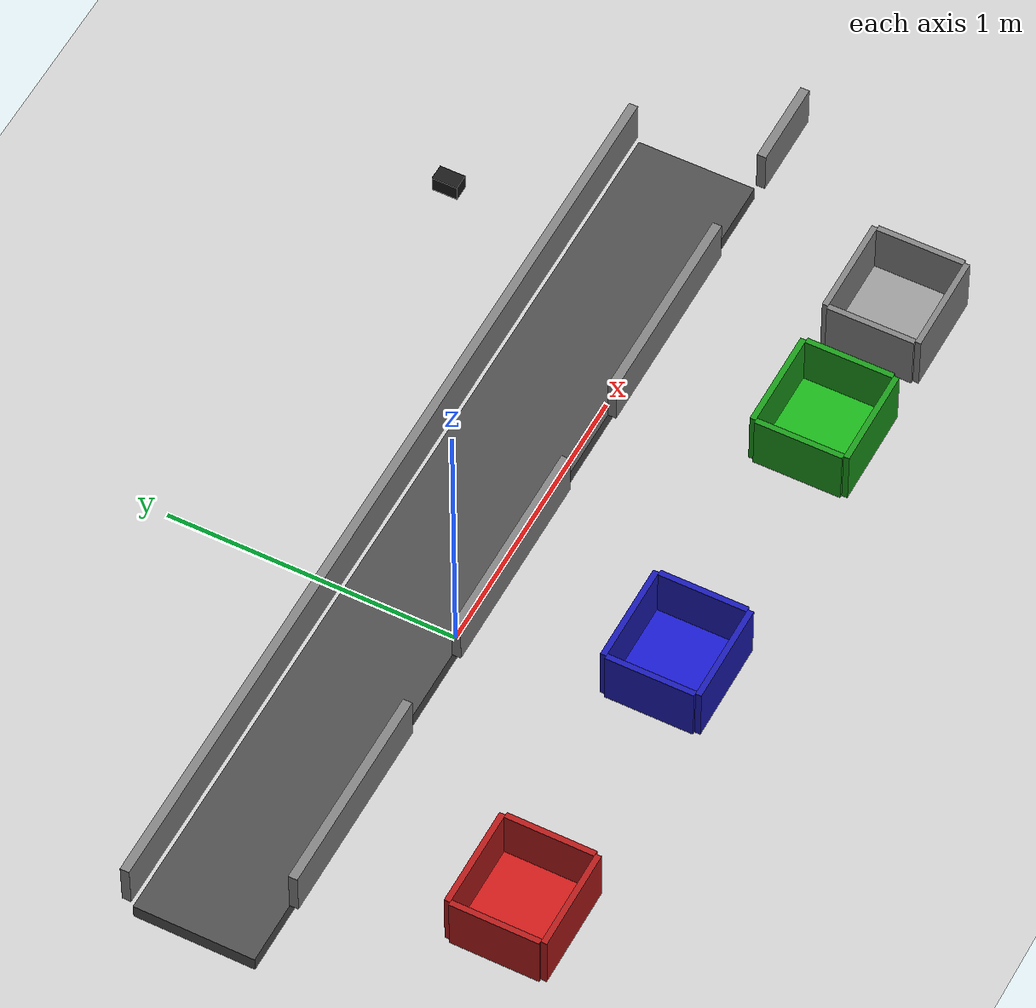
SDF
<?xml version="1.0"?>
<sdf version="1.6">
  <world name="conveyor_world">

    <include><uri>model://sun</uri></include>
    <include><uri>model://ground_plane</uri></include>

    <light name="overhead_light" type="directional">
      <pose>0 0 10 0 0 0</pose>
      <diffuse>1.0 1.0 1.0 1</diffuse>
      <specular>0.2 0.2 0.2 1</specular>
      <direction>0 0 -1</direction>
      <cast_shadows>false</cast_shadows>
    </light>

    <!-- Conveyor belt -->
    <model name="conveyor_belt">
      <static>true</static>
      <pose>0 0 0 0 0 0</pose>

      <link name="belt_surface">
        <pose>0 0 0.5 0 0 0</pose>
        <collision name="belt_col">
          <geometry><box><size>3.2 0.4 0.05</size></box></geometry>
          <surface>
            <friction><ode><mu>0.8</mu><mu2>0.8</mu2></ode></friction>
          </surface>
        </collision>
        <visual name="belt_vis">
          <geometry><box><size>3.2 0.4 0.05</size></box></geometry>
          <material>
            <ambient>0.2 0.2 0.2 1</ambient>
            <diffuse>0.3 0.3 0.3 1</diffuse>
          </material>
        </visual>
      </link>

      <!-- Back rail (boxes pushed toward front/negative Y) -->
      <link name="back_rail">
        <pose>0 0.22 0.62 0 0 0</pose>
        <collision name="br_col">
          <geometry><box><size>3.2 0.03 0.15</size></box></geometry>
        </collision>
        <visual name="br_vis">
          <geometry><box><size>3.2 0.03 0.15</size></box></geometry>
          <material><ambient>0.5 0.5 0.5 1</ambient></material>
        </visual>
      </link>

      <!-- Front rail has gaps at bin positions so boxes can exit -->
      <!-- Segment 1: spawn to red bin -->
      <link name="front_rail_1">
        <pose>-1.05 -0.22 0.62 0 0 0</pose>
        <collision name="fr1_col">
          <geometry><box><size>0.7 0.03 0.15</size></box></geometry>
        </collision>
        <visual name="fr1_vis">
          <geometry><box><size>0.7 0.03 0.15</size></box></geometry>
          <material><ambient>0.5 0.5 0.5 1</ambient></material>
        </visual>
      </link>

      <!-- Segment 2: red bin to blue bin -->
      <link name="front_rail_2">
        <pose>-0.05 -0.22 0.62 0 0 0</pose>
        <collision name="fr2_col">
          <geometry><box><size>0.7 0.03 0.15</size></box></geometry>
        </collision>
        <visual name="fr2_vis">
          <geometry><box><size>0.7 0.03 0.15</size></box></geometry>
          <material><ambient>0.5 0.5 0.5 1</ambient></material>
        </visual>
      </link>

      <!-- Segment 3: blue bin to green bin -->
      <link name="front_rail_3">
        <pose>0.95 -0.22 0.62 0 0 0</pose>
        <collision name="fr3_col">
          <geometry><box><size>0.7 0.03 0.15</size></box></geometry>
        </collision>
        <visual name="fr3_vis">
          <geometry><box><size>0.7 0.03 0.15</size></box></geometry>
          <material><ambient>0.5 0.5 0.5 1</ambient></material>
        </visual>
      </link>

      <!-- Segment 4: after green bin to end -->
      <link name="front_rail_4">
        <pose>1.75 -0.22 0.62 0 0 0</pose>
        <collision name="fr4_col">
          <geometry><box><size>0.3 0.03 0.15</size></box></geometry>
        </collision>
        <visual name="fr4_vis">
          <geometry><box><size>0.3 0.03 0.15</size></box></geometry>
          <material><ambient>0.5 0.5 0.5 1</ambient></material>
        </visual>
      </link>
    </model>

    <!-- RED BIN — at X=-0.8, front of belt -->
    <model name="bin_red">
      <static>true</static>
      <pose>-0.8 -0.65 0 0 0 0</pose>
      <link name="floor">
        <pose>0 0 0.01 0 0 0</pose>
        <collision name="c"><geometry><box><size>0.35 0.3 0.02</size></box></geometry></collision>
        <visual name="v"><geometry><box><size>0.35 0.3 0.02</size></box></geometry>
          <material><ambient>0.7 0.1 0.1 1</ambient><diffuse>0.8 0.1 0.1 1</diffuse></material>
        </visual>
      </link>
      <link name="wall_f"><pose>0 -0.16 0.1 0 0 0</pose>
        <collision name="c"><geometry><box><size>0.35 0.02 0.2</size></box></geometry></collision>
        <visual name="v"><geometry><box><size>0.35 0.02 0.2</size></box></geometry>
          <material><ambient>0.7 0.1 0.1 1</ambient></material></visual>
      </link>
      <link name="wall_b"><pose>0 0.16 0.1 0 0 0</pose>
        <collision name="c"><geometry><box><size>0.35 0.02 0.2</size></box></geometry></collision>
        <visual name="v"><geometry><box><size>0.35 0.02 0.2</size></box></geometry>
          <material><ambient>0.7 0.1 0.1 1</ambient></material></visual>
      </link>
      <link name="wall_l"><pose>-0.175 0 0.1 0 0 0</pose>
        <collision name="c"><geometry><box><size>0.02 0.3 0.2</size></box></geometry></collision>
        <visual name="v"><geometry><box><size>0.02 0.3 0.2</size></box></geometry>
          <material><ambient>0.7 0.1 0.1 1</ambient></material></visual>
      </link>
      <link name="wall_r"><pose>0.175 0 0.1 0 0 0</pose>
        <collision name="c"><geometry><box><size>0.02 0.3 0.2</size></box></geometry></collision>
        <visual name="v"><geometry><box><size>0.02 0.3 0.2</size></box></geometry>
          <material><ambient>0.7 0.1 0.1 1</ambient></material></visual>
      </link>
    </model>

    <!-- BLUE BIN — at X=0.2, front of belt -->
    <model name="bin_blue">
      <static>true</static>
      <pose>0.2 -0.65 0 0 0 0</pose>
      <link name="floor">
        <pose>0 0 0.01 0 0 0</pose>
        <collision name="c"><geometry><box><size>0.35 0.3 0.02</size></box></geometry></collision>
        <visual name="v"><geometry><box><size>0.35 0.3 0.02</size></box></geometry>
          <material><ambient>0.1 0.1 0.7 1</ambient><diffuse>0.1 0.1 0.8 1</diffuse></material>
        </visual>
      </link>
      <link name="wall_f"><pose>0 -0.16 0.1 0 0 0</pose>
        <collision name="c"><geometry><box><size>0.35 0.02 0.2</size></box></geometry></collision>
        <visual name="v"><geometry><box><size>0.35 0.02 0.2</size></box></geometry>
          <material><ambient>0.1 0.1 0.7 1</ambient></material></visual>
      </link>
      <link name="wall_b"><pose>0 0.16 0.1 0 0 0</pose>
        <collision name="c"><geometry><box><size>0.35 0.02 0.2</size></box></geometry></collision>
        <visual name="v"><geometry><box><size>0.35 0.02 0.2</size></box></geometry>
          <material><ambient>0.1 0.1 0.7 1</ambient></material></visual>
      </link>
      <link name="wall_l"><pose>-0.175 0 0.1 0 0 0</pose>
        <collision name="c"><geometry><box><size>0.02 0.3 0.2</size></box></geometry></collision>
        <visual name="v"><geometry><box><size>0.02 0.3 0.2</size></box></geometry>
          <material><ambient>0.1 0.1 0.7 1</ambient></material></visual>
      </link>
      <link name="wall_r"><pose>0.175 0 0.1 0 0 0</pose>
        <collision name="c"><geometry><box><size>0.02 0.3 0.2</size></box></geometry></collision>
        <visual name="v"><geometry><box><size>0.02 0.3 0.2</size></box></geometry>
          <material><ambient>0.1 0.1 0.7 1</ambient></material></visual>
      </link>
    </model>

    <!-- GREEN BIN — at X=1.2, front of belt -->
    <model name="bin_green">
      <static>true</static>
      <pose>1.2 -0.65 0 0 0 0</pose>
      <link name="floor">
        <pose>0 0 0.01 0 0 0</pose>
        <collision name="c"><geometry><box><size>0.35 0.3 0.02</size></box></geometry></collision>
        <visual name="v"><geometry><box><size>0.35 0.3 0.02</size></box></geometry>
          <material><ambient>0.1 0.6 0.1 1</ambient><diffuse>0.1 0.7 0.1 1</diffuse></material>
        </visual>
      </link>
      <link name="wall_f"><pose>0 -0.16 0.1 0 0 0</pose>
        <collision name="c"><geometry><box><size>0.35 0.02 0.2</size></box></geometry></collision>
        <visual name="v"><geometry><box><size>0.35 0.02 0.2</size></box></geometry>
          <material><ambient>0.1 0.6 0.1 1</ambient></material></visual>
      </link>
      <link name="wall_b"><pose>0 0.16 0.1 0 0 0</pose>
        <collision name="c"><geometry><box><size>0.35 0.02 0.2</size></box></geometry></collision>
        <visual name="v"><geometry><box><size>0.35 0.02 0.2</size></box></geometry>
          <material><ambient>0.1 0.6 0.1 1</ambient></material></visual>
      </link>
      <link name="wall_l"><pose>-0.175 0 0.1 0 0 0</pose>
        <collision name="c"><geometry><box><size>0.02 0.3 0.2</size></box></geometry></collision>
        <visual name="v"><geometry><box><size>0.02 0.3 0.2</size></box></geometry>
          <material><ambient>0.1 0.6 0.1 1</ambient></material></visual>
      </link>
      <link name="wall_r"><pose>0.175 0 0.1 0 0 0</pose>
        <collision name="c"><geometry><box><size>0.02 0.3 0.2</size></box></geometry></collision>
        <visual name="v"><geometry><box><size>0.02 0.3 0.2</size></box></geometry>
          <material><ambient>0.1 0.6 0.1 1</ambient></material></visual>
      </link>
    </model>

    <!-- MISC BIN — at X=1.7, catches unknown colors -->
<model name="bin_misc">
  <static>true</static>
  <pose>1.7 -0.65 0 0 0 0</pose>
  <link name="floor">
    <pose>0 0 0.01 0 0 0</pose>
    <collision name="c"><geometry><box><size>0.35 0.3 0.02</size></box></geometry></collision>
    <visual name="v"><geometry><box><size>0.35 0.3 0.02</size></box></geometry>
      <material><ambient>0.5 0.5 0.5 1</ambient><diffuse>0.6 0.6 0.6 1</diffuse></material>
    </visual>
  </link>
  <link name="wall_f"><pose>0 -0.16 0.1 0 0 0</pose>
    <collision name="c"><geometry><box><size>0.35 0.02 0.2</size></box></geometry></collision>
    <visual name="v"><geometry><box><size>0.35 0.02 0.2</size></box></geometry>
      <material><ambient>0.5 0.5 0.5 1</ambient></material></visual>
  </link>
  <link name="wall_b"><pose>0 0.16 0.1 0 0 0</pose>
    <collision name="c"><geometry><box><size>0.35 0.02 0.2</size></box></geometry></collision>
    <visual name="v"><geometry><box><size>0.35 0.02 0.2</size></box></geometry>
      <material><ambient>0.5 0.5 0.5 1</ambient></material></visual>
  </link>
  <link name="wall_l"><pose>-0.175 0 0.1 0 0 0</pose>
    <collision name="c"><geometry><box><size>0.02 0.3 0.2</size></box></geometry></collision>
    <visual name="v"><geometry><box><size>0.02 0.3 0.2</size></box></geometry>
      <material><ambient>0.5 0.5 0.5 1</ambient></material></visual>
  </link>
  <link name="wall_r"><pose>0.175 0 0.1 0 0 0</pose>
    <collision name="c"><geometry><box><size>0.02 0.3 0.2</size></box></geometry></collision>
    <visual name="v"><geometry><box><size>0.02 0.3 0.2</size></box></geometry>
      <material><ambient>0.5 0.5 0.5 1</ambient></material></visual>
  </link>
</model>

    <!-- Overhead camera -->
    <model name="conveyor_camera">
      <static>true</static>
      <pose>0 0 2.2 0 1.5708 0</pose>
      <link name="camera_link">
        <visual name="cam_vis">
          <geometry><box><size>0.05 0.08 0.05</size></box></geometry>
          <material><ambient>0.1 0.1 0.1 1</ambient></material>
        </visual>
        <sensor name="conveyor_cam" type="camera">
          <always_on>true</always_on>
          <update_rate>10</update_rate>
          <camera>
            <horizontal_fov>1.2</horizontal_fov>
            <image>
              <width>640</width><height>480</height>
              <format>R8G8B8</format>
            </image>
            <clip><near>0.1</near><far>10</far></clip>
          </camera>
          <plugin name="camera_plugin" filename="libgazebo_ros_camera.so">
            <ros>
              <remapping>image_raw:=/conveyor_camera/image_raw</remapping>
              <remapping>camera_info:=/conveyor_camera/camera_info</remapping>
            </ros>
            <frame_name>camera_link</frame_name>
          </plugin>
        </sensor>
      </link>
    </model>

    <physics name="default_physics" default="true" type="ode">
      <max_step_size>0.001</max_step_size>
      <real_time_factor>1</real_time_factor>
      <real_time_update_rate>1000</real_time_update_rate>
      <gravity>0 0 -9.8</gravity>
    </physics>

  </world>
</sdf>
